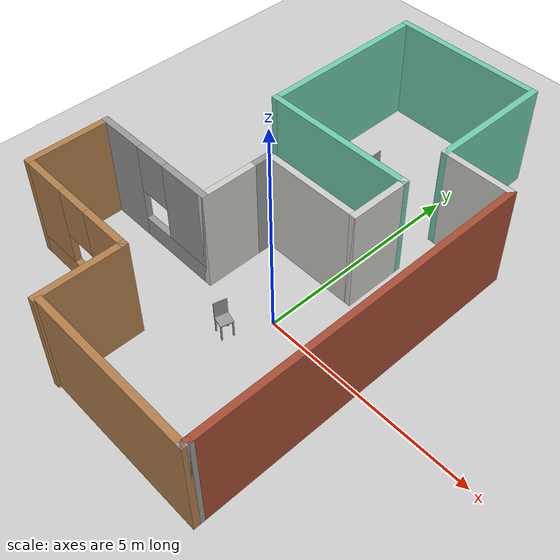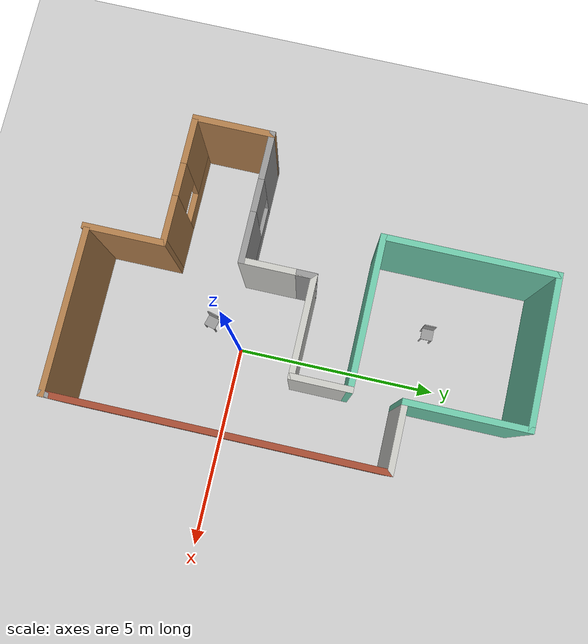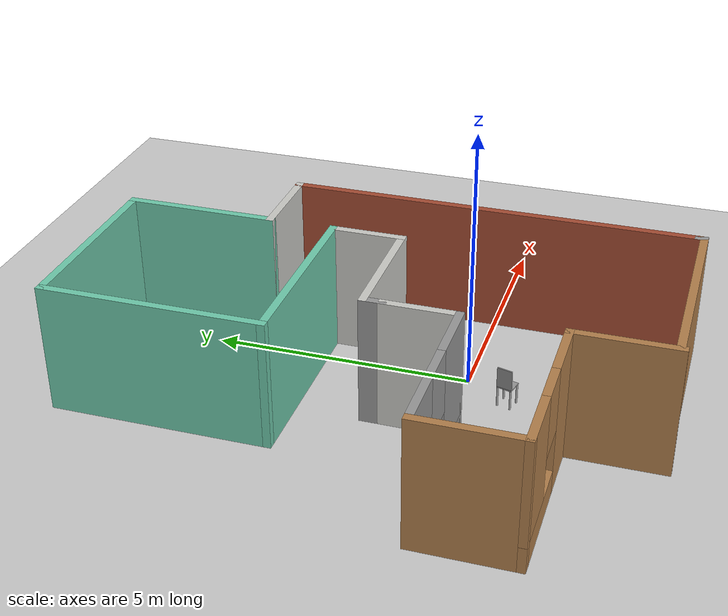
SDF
<sdf version="1.6">
 <world name="default">
  <model name="ground_plane">
   <static>1</static>
   <link name="link">
    <collision name="collision">
     <geometry><plane><normal>0 0 1</normal><size>100 100</size></plane></geometry>
     <surface><friction><ode><mu>100</mu><mu2>50</mu2></ode></friction></surface>
    </collision>
    <visual name="visual">
     <cast_shadows>0</cast_shadows>
     <geometry><plane><normal>0 0 1</normal><size>100 100</size></plane></geometry>
     <material>
      <script><uri>file://media/materials/scripts/gazebo.material</uri><name>Gazebo/Grey</name></script>
     </material>
    </visual>
   </link>
  </model>
  <model name="myChair">
   <link name="link_0">
    <pose>0.022917 -0 0.0914 0 -0 0</pose>
    <inertial>
     <mass>1</mass>
     <inertia>
      <ixx>0.166667</ixx>
      <ixy>0</ixy>
      <ixz>0</ixz>
      <iyy>0.166667</iyy>
      <iyz>0</iyz>
      <izz>0.166667</izz>
     </inertia>
    </inertial>
    <visual name="visual">
     <geometry><box><size>0.3 0.3 0.025</size></box></geometry>
     <material>
      <lighting>1</lighting>
      <script><uri>file://media/materials/scripts/gazebo.material</uri><name>Gazebo/Grey</name></script>
      <ambient>0.3 0.3 0.3 1</ambient>
      <diffuse>0.7 0.7 0.7 1</diffuse>
      <specular>0.01 0.01 0.01 1</specular>
      <emissive>0 0 0 1</emissive>
      <shader type="vertex"><normal_map>__default__</normal_map></shader>
     </material>
    </visual>
    <collision name="collision">
     <geometry><box><size>0.3 0.3 0.025</size></box></geometry>
     <surface>
      <friction>
       <ode><mu>1</mu><mu2>1</mu2><fdir1>0 0 0</fdir1><slip1>0</slip1><slip2>0</slip2></ode>
       <torsional>
        <coefficient>1</coefficient>
        <patch_radius>0</patch_radius>
        <surface_radius>0</surface_radius>
        <use_patch_radius>1</use_patch_radius>
        <ode><slip>0</slip></ode>
       </torsional>
      </friction>
      <bounce><restitution_coefficient>0</restitution_coefficient><threshold>1e+06</threshold></bounce>
      <contact>
       <collide_without_contact>0</collide_without_contact>
       <collide_without_contact_bitmask>1</collide_without_contact_bitmask>
       <collide_bitmask>1</collide_bitmask>
       <ode>
        <soft_cfm>0</soft_cfm>
        <soft_erp>0.2</soft_erp>
        <kp>1e+13</kp>
        <kd>1</kd>
        <max_vel>0.01</max_vel>
        <min_depth>0</min_depth>
       </ode>
       <bullet>
        <split_impulse>1</split_impulse>
        <split_impulse_penetration_threshold>-0.01</split_impulse_penetration_threshold>
        <soft_cfm>0</soft_cfm>
        <soft_erp>0.2</soft_erp>
        <kp>1e+13</kp>
        <kd>1</kd>
       </bullet>
      </contact>
     </surface>
    </collision>
   </link>
   <link name="link_1">
    <pose>-0.107083 -0.13 -0.11875 0 -0 0</pose>
    <inertial>
     <mass>1</mass>
     <inertia><ixx>0.145833</ixx><ixy>0</ixy><ixz>0</ixz><iyy>0.145833</iyy><iyz>0</iyz><izz>0.125</izz></inertia>
    </inertial>
    <visual name="visual">
     <geometry><cylinder><radius>0.02</radius><length>0.4</length></cylinder></geometry>
     <material>
      <lighting>1</lighting>
      <script><uri>file://media/materials/scripts/gazebo.material</uri><name>Gazebo/Grey</name></script>
      <ambient>0.3 0.3 0.3 1</ambient>
      <diffuse>0.7 0.7 0.7 1</diffuse>
      <specular>0.01 0.01 0.01 1</specular>
      <emissive>0 0 0 1</emissive>
      <shader type="vertex"><normal_map>__default__</normal_map></shader>
     </material>
    </visual>
    <collision name="collision">
     <geometry><cylinder><radius>0.02</radius><length>0.4</length></cylinder></geometry>
     <surface>
      <friction>
       <ode><mu>1</mu><mu2>1</mu2><fdir1>0 0 0</fdir1><slip1>0</slip1><slip2>0</slip2></ode>
       <torsional>
        <coefficient>1</coefficient>
        <patch_radius>0</patch_radius>
        <surface_radius>0</surface_radius>
        <use_patch_radius>1</use_patch_radius>
        <ode><slip>0</slip></ode>
       </torsional>
      </friction>
      <bounce><restitution_coefficient>0</restitution_coefficient><threshold>1e+06</threshold></bounce>
      <contact>
       <collide_without_contact>0</collide_without_contact>
       <collide_without_contact_bitmask>1</collide_without_contact_bitmask>
       <collide_bitmask>1</collide_bitmask>
       <ode>
        <soft_cfm>0</soft_cfm>
        <soft_erp>0.2</soft_erp>
        <kp>1e+13</kp>
        <kd>1</kd>
        <max_vel>0.01</max_vel>
        <min_depth>0</min_depth>
       </ode>
       <bullet>
        <split_impulse>1</split_impulse>
        <split_impulse_penetration_threshold>-0.01</split_impulse_penetration_threshold>
        <soft_cfm>0</soft_cfm>
        <soft_erp>0.2</soft_erp>
        <kp>1e+13</kp>
        <kd>1</kd>
       </bullet>
      </contact>
     </surface>
    </collision>
   </link>
   <link name="link_1_clone">
    <pose>-0.107083 0.13 -0.11875 0 -0 0</pose>
    <inertial>
     <mass>1</mass>
     <inertia><ixx>0.145833</ixx><ixy>0</ixy><ixz>0</ixz><iyy>0.145833</iyy><iyz>0</iyz><izz>0.125</izz></inertia>
    </inertial>
    <visual name="visual">
     <geometry><cylinder><radius>0.02</radius><length>0.4</length></cylinder></geometry>
     <material>
      <lighting>1</lighting>
      <script><uri>file://media/materials/scripts/gazebo.material</uri><name>Gazebo/Grey</name></script>
      <ambient>0.3 0.3 0.3 1</ambient>
      <diffuse>0.7 0.7 0.7 1</diffuse>
      <specular>0.01 0.01 0.01 1</specular>
      <emissive>0 0 0 1</emissive>
      <shader type="vertex"><normal_map>__default__</normal_map></shader>
     </material>
    </visual>
    <collision name="collision">
     <geometry><cylinder><radius>0.02</radius><length>0.4</length></cylinder></geometry>
     <surface>
      <friction>
       <ode><mu>1</mu><mu2>1</mu2><fdir1>0 0 0</fdir1><slip1>0</slip1><slip2>0</slip2></ode>
       <torsional>
        <coefficient>1</coefficient>
        <patch_radius>0</patch_radius>
        <surface_radius>0</surface_radius>
        <use_patch_radius>1</use_patch_radius>
        <ode><slip>0</slip></ode>
       </torsional>
      </friction>
      <bounce><restitution_coefficient>0</restitution_coefficient><threshold>1e+06</threshold></bounce>
      <contact>
       <collide_without_contact>0</collide_without_contact>
       <collide_without_contact_bitmask>1</collide_without_contact_bitmask>
       <collide_bitmask>1</collide_bitmask>
       <ode>
        <soft_cfm>0</soft_cfm>
        <soft_erp>0.2</soft_erp>
        <kp>1e+13</kp>
        <kd>1</kd>
        <max_vel>0.01</max_vel>
        <min_depth>0</min_depth>
       </ode>
       <bullet>
        <split_impulse>1</split_impulse>
        <split_impulse_penetration_threshold>-0.01</split_impulse_penetration_threshold>
        <soft_cfm>0</soft_cfm>
        <soft_erp>0.2</soft_erp>
        <kp>1e+13</kp>
        <kd>1</kd>
       </bullet>
      </contact>
     </surface>
    </collision>
   </link>
   <link name="link_1_clone_0">
    <pose>0.152917 -0.13 -0.11875 0 -0 0</pose>
    <inertial>
     <mass>1</mass>
     <inertia><ixx>0.145833</ixx><ixy>0</ixy><ixz>0</ixz><iyy>0.145833</iyy><iyz>0</iyz><izz>0.125</izz></inertia>
    </inertial>
    <visual name="visual">
     <geometry><cylinder><radius>0.02</radius><length>0.4</length></cylinder></geometry>
     <material>
      <lighting>1</lighting>
      <script><uri>file://media/materials/scripts/gazebo.material</uri><name>Gazebo/Grey</name></script>
      <ambient>0.3 0.3 0.3 1</ambient>
      <diffuse>0.7 0.7 0.7 1</diffuse>
      <specular>0.01 0.01 0.01 1</specular>
      <emissive>0 0 0 1</emissive>
      <shader type="vertex"><normal_map>__default__</normal_map></shader>
     </material>
    </visual>
    <collision name="collision">
     <geometry><cylinder><radius>0.02</radius><length>0.4</length></cylinder></geometry>
     <surface>
      <friction>
       <ode><mu>1</mu><mu2>1</mu2><fdir1>0 0 0</fdir1><slip1>0</slip1><slip2>0</slip2></ode>
       <torsional>
        <coefficient>1</coefficient>
        <patch_radius>0</patch_radius>
        <surface_radius>0</surface_radius>
        <use_patch_radius>1</use_patch_radius>
        <ode><slip>0</slip></ode>
       </torsional>
      </friction>
      <bounce><restitution_coefficient>0</restitution_coefficient><threshold>1e+06</threshold></bounce>
      <contact>
       <collide_without_contact>0</collide_without_contact>
       <collide_without_contact_bitmask>1</collide_without_contact_bitmask>
       <collide_bitmask>1</collide_bitmask>
       <ode>
        <soft_cfm>0</soft_cfm>
        <soft_erp>0.2</soft_erp>
        <kp>1e+13</kp>
        <kd>1</kd>
        <max_vel>0.01</max_vel>
        <min_depth>0</min_depth>
       </ode>
       <bullet>
        <split_impulse>1</split_impulse>
        <split_impulse_penetration_threshold>-0.01</split_impulse_penetration_threshold>
        <soft_cfm>0</soft_cfm>
        <soft_erp>0.2</soft_erp>
        <kp>1e+13</kp>
        <kd>1</kd>
       </bullet>
      </contact>
     </surface>
    </collision>
   </link>
   <link name="link_1_clone_1">
    <pose>0.152917 0.13 -0.11875 0 -0 0</pose>
    <inertial>
     <mass>1</mass>
     <inertia><ixx>0.145833</ixx><ixy>0</ixy><ixz>0</ixz><iyy>0.145833</iyy><iyz>0</iyz><izz>0.125</izz></inertia>
    </inertial>
    <visual name="visual">
     <geometry><cylinder><radius>0.02</radius><length>0.4</length></cylinder></geometry>
     <material>
      <lighting>1</lighting>
      <script><uri>file://media/materials/scripts/gazebo.material</uri><name>Gazebo/Grey</name></script>
      <ambient>0.3 0.3 0.3 1</ambient>
      <diffuse>0.7 0.7 0.7 1</diffuse>
      <specular>0.01 0.01 0.01 1</specular>
      <emissive>0 0 0 1</emissive>
      <shader type="vertex"><normal_map>__default__</normal_map></shader>
     </material>
    </visual>
    <collision name="collision">
     <geometry><cylinder><radius>0.02</radius><length>0.4</length></cylinder></geometry>
     <surface>
      <friction>
       <ode><mu>1</mu><mu2>1</mu2><fdir1>0 0 0</fdir1><slip1>0</slip1><slip2>0</slip2></ode>
       <torsional>
        <coefficient>1</coefficient>
        <patch_radius>0</patch_radius>
        <surface_radius>0</surface_radius>
        <use_patch_radius>1</use_patch_radius>
        <ode><slip>0</slip></ode>
       </torsional>
      </friction>
      <bounce><restitution_coefficient>0</restitution_coefficient><threshold>1e+06</threshold></bounce>
      <contact>
       <collide_without_contact>0</collide_without_contact>
       <collide_without_contact_bitmask>1</collide_without_contact_bitmask>
       <collide_bitmask>1</collide_bitmask>
       <ode>
        <soft_cfm>0</soft_cfm>
        <soft_erp>0.2</soft_erp>
        <kp>1e+13</kp>
        <kd>1</kd>
        <max_vel>0.01</max_vel>
        <min_depth>0</min_depth>
       </ode>
       <bullet>
        <split_impulse>1</split_impulse>
        <split_impulse_penetration_threshold>-0.01</split_impulse_penetration_threshold>
        <soft_cfm>0</soft_cfm>
        <soft_erp>0.2</soft_erp>
        <kp>1e+13</kp>
        <kd>1</kd>
       </bullet>
      </contact>
     </surface>
    </collision>
   </link>
   <link name="link_2">
    <pose>-0.114583 0 0.303495 0 -0 0</pose>
    <inertial>
     <mass>1</mass>
     <inertia>
      <ixx>0.166667</ixx>
      <ixy>0</ixy>
      <ixz>0</ixz>
      <iyy>0.166667</iyy>
      <iyz>0</iyz>
      <izz>0.166667</izz>
     </inertia>
    </inertial>
    <visual name="visual">
     <geometry><box><size>0.025 0.3 0.4</size></box></geometry>
     <material>
      <lighting>1</lighting>
      <script><uri>file://media/materials/scripts/gazebo.material</uri><name>Gazebo/Grey</name></script>
      <ambient>0.3 0.3 0.3 1</ambient>
      <diffuse>0.7 0.7 0.7 1</diffuse>
      <specular>0.01 0.01 0.01 1</specular>
      <emissive>0 0 0 1</emissive>
      <shader type="vertex"><normal_map>__default__</normal_map></shader>
     </material>
    </visual>
    <collision name="collision">
     <geometry><box><size>0.025 0.3 0.4</size></box></geometry>
     <surface>
      <friction>
       <ode><mu>1</mu><mu2>1</mu2><fdir1>0 0 0</fdir1><slip1>0</slip1><slip2>0</slip2></ode>
       <torsional>
        <coefficient>1</coefficient>
        <patch_radius>0</patch_radius>
        <surface_radius>0</surface_radius>
        <use_patch_radius>1</use_patch_radius>
        <ode><slip>0</slip></ode>
       </torsional>
      </friction>
      <bounce><restitution_coefficient>0</restitution_coefficient><threshold>1e+06</threshold></bounce>
      <contact>
       <collide_without_contact>0</collide_without_contact>
       <collide_without_contact_bitmask>1</collide_without_contact_bitmask>
       <collide_bitmask>1</collide_bitmask>
       <ode>
        <soft_cfm>0</soft_cfm>
        <soft_erp>0.2</soft_erp>
        <kp>1e+13</kp>
        <kd>1</kd>
        <max_vel>0.01</max_vel>
        <min_depth>0</min_depth>
       </ode>
       <bullet>
        <split_impulse>1</split_impulse>
        <split_impulse_penetration_threshold>-0.01</split_impulse_penetration_threshold>
        <soft_cfm>0</soft_cfm>
        <soft_erp>0.2</soft_erp>
        <kp>1e+13</kp>
        <kd>1</kd>
       </bullet>
      </contact>
     </surface>
    </collision>
   </link>
   <joint name="link_0_JOINT_0" type="fixed">
    <parent>link_0</parent>
    <child>link_1</child>
    <physics>
     <ode><limit><cfm>0</cfm><erp>0.2</erp></limit><suspension><cfm>0</cfm><erp>0.2</erp></suspension></ode>
    </physics>
   </joint>
   <joint name="link_0_JOINT_1" type="fixed">
    <parent>link_0</parent>
    <child>link_1_clone</child>
    <physics>
     <ode><limit><cfm>0</cfm><erp>0.2</erp></limit><suspension><cfm>0</cfm><erp>0.2</erp></suspension></ode>
    </physics>
   </joint>
   <joint name="link_0_JOINT_2" type="fixed">
    <parent>link_0</parent>
    <child>link_1_clone_0</child>
    <physics>
     <ode><limit><cfm>0</cfm><erp>0.2</erp></limit><suspension><cfm>0</cfm><erp>0.2</erp></suspension></ode>
    </physics>
   </joint>
   <joint name="link_0_JOINT_3" type="fixed">
    <parent>link_0</parent>
    <child>link_1_clone_1</child>
    <physics>
     <ode><limit><cfm>0</cfm><erp>0.2</erp></limit><suspension><cfm>0</cfm><erp>0.2</erp></suspension></ode>
    </physics>
   </joint>
   <joint name="link_0_JOINT_5" type="revolute">
    <parent>link_0</parent>
    <child>link_2</child>
    <axis>
     <xyz>1 0 0</xyz>
     <use_parent_model_frame>0</use_parent_model_frame>
     <limit>
      <lower>-1.79769e+308</lower>
      <upper>1.79769e+308</upper>
      <effort>-1</effort>
      <velocity>-1</velocity>
     </limit>
     <dynamics>
      <spring_reference>0</spring_reference>
      <spring_stiffness>0</spring_stiffness>
      <damping>0</damping>
      <friction>0</friction>
     </dynamics>
    </axis>
    <physics>
     <ode><limit><cfm>0</cfm><erp>0.2</erp></limit><suspension><cfm>0</cfm><erp>0.2</erp></suspension></ode>
    </physics>
   </joint>
   <static>0</static>
   <pose>-1.4029 4.54214 0.318748 1e-06 -3e-06 0.003579</pose>
  </model>
  <model name="myChair_clone_clone_0_clone_0">
   <link name="link_0">
    <pose>0.022917 -0 0.0914 0 -0 0</pose>
    <inertial>
     <mass>1</mass>
     <inertia>
      <ixx>0.166667</ixx>
      <ixy>0</ixy>
      <ixz>0</ixz>
      <iyy>0.166667</iyy>
      <iyz>0</iyz>
      <izz>0.166667</izz>
     </inertia>
    </inertial>
    <visual name="visual">
     <geometry><box><size>0.3 0.3 0.025</size></box></geometry>
     <material>
      <lighting>1</lighting>
      <script><uri>file://media/materials/scripts/gazebo.material</uri><name>Gazebo/Grey</name></script>
      <ambient>0.3 0.3 0.3 1</ambient>
      <diffuse>0.7 0.7 0.7 1</diffuse>
      <specular>0.01 0.01 0.01 1</specular>
      <emissive>0 0 0 1</emissive>
      <shader type="vertex"><normal_map>__default__</normal_map></shader>
     </material>
    </visual>
    <collision name="collision">
     <geometry><box><size>0.3 0.3 0.025</size></box></geometry>
     <surface>
      <friction>
       <ode><mu>1</mu><mu2>1</mu2><fdir1>0 0 0</fdir1><slip1>0</slip1><slip2>0</slip2></ode>
       <torsional>
        <coefficient>1</coefficient>
        <patch_radius>0</patch_radius>
        <surface_radius>0</surface_radius>
        <use_patch_radius>1</use_patch_radius>
        <ode><slip>0</slip></ode>
       </torsional>
      </friction>
      <bounce><restitution_coefficient>0</restitution_coefficient><threshold>1e+06</threshold></bounce>
      <contact>
       <collide_without_contact>0</collide_without_contact>
       <collide_without_contact_bitmask>1</collide_without_contact_bitmask>
       <collide_bitmask>1</collide_bitmask>
       <ode>
        <soft_cfm>0</soft_cfm>
        <soft_erp>0.2</soft_erp>
        <kp>1e+13</kp>
        <kd>1</kd>
        <max_vel>0.01</max_vel>
        <min_depth>0</min_depth>
       </ode>
       <bullet>
        <split_impulse>1</split_impulse>
        <split_impulse_penetration_threshold>-0.01</split_impulse_penetration_threshold>
        <soft_cfm>0</soft_cfm>
        <soft_erp>0.2</soft_erp>
        <kp>1e+13</kp>
        <kd>1</kd>
       </bullet>
      </contact>
     </surface>
    </collision>
   </link>
   <link name="link_1">
    <pose>-0.107083 -0.13 -0.11875 0 -0 0</pose>
    <inertial>
     <mass>1</mass>
     <inertia><ixx>0.145833</ixx><ixy>0</ixy><ixz>0</ixz><iyy>0.145833</iyy><iyz>0</iyz><izz>0.125</izz></inertia>
    </inertial>
    <visual name="visual">
     <geometry><cylinder><radius>0.02</radius><length>0.4</length></cylinder></geometry>
     <material>
      <lighting>1</lighting>
      <script><uri>file://media/materials/scripts/gazebo.material</uri><name>Gazebo/Grey</name></script>
      <ambient>0.3 0.3 0.3 1</ambient>
      <diffuse>0.7 0.7 0.7 1</diffuse>
      <specular>0.01 0.01 0.01 1</specular>
      <emissive>0 0 0 1</emissive>
      <shader type="vertex"><normal_map>__default__</normal_map></shader>
     </material>
    </visual>
    <collision name="collision">
     <geometry><cylinder><radius>0.02</radius><length>0.4</length></cylinder></geometry>
     <surface>
      <friction>
       <ode><mu>1</mu><mu2>1</mu2><fdir1>0 0 0</fdir1><slip1>0</slip1><slip2>0</slip2></ode>
       <torsional>
        <coefficient>1</coefficient>
        <patch_radius>0</patch_radius>
        <surface_radius>0</surface_radius>
        <use_patch_radius>1</use_patch_radius>
        <ode><slip>0</slip></ode>
       </torsional>
      </friction>
      <bounce><restitution_coefficient>0</restitution_coefficient><threshold>1e+06</threshold></bounce>
      <contact>
       <collide_without_contact>0</collide_without_contact>
       <collide_without_contact_bitmask>1</collide_without_contact_bitmask>
       <collide_bitmask>1</collide_bitmask>
       <ode>
        <soft_cfm>0</soft_cfm>
        <soft_erp>0.2</soft_erp>
        <kp>1e+13</kp>
        <kd>1</kd>
        <max_vel>0.01</max_vel>
        <min_depth>0</min_depth>
       </ode>
       <bullet>
        <split_impulse>1</split_impulse>
        <split_impulse_penetration_threshold>-0.01</split_impulse_penetration_threshold>
        <soft_cfm>0</soft_cfm>
        <soft_erp>0.2</soft_erp>
        <kp>1e+13</kp>
        <kd>1</kd>
       </bullet>
      </contact>
     </surface>
    </collision>
   </link>
   <link name="link_1_clone">
    <pose>-0.107083 0.13 -0.11875 0 -0 0</pose>
    <inertial>
     <mass>1</mass>
     <inertia><ixx>0.145833</ixx><ixy>0</ixy><ixz>0</ixz><iyy>0.145833</iyy><iyz>0</iyz><izz>0.125</izz></inertia>
    </inertial>
    <visual name="visual">
     <geometry><cylinder><radius>0.02</radius><length>0.4</length></cylinder></geometry>
     <material>
      <lighting>1</lighting>
      <script><uri>file://media/materials/scripts/gazebo.material</uri><name>Gazebo/Grey</name></script>
      <ambient>0.3 0.3 0.3 1</ambient>
      <diffuse>0.7 0.7 0.7 1</diffuse>
      <specular>0.01 0.01 0.01 1</specular>
      <emissive>0 0 0 1</emissive>
      <shader type="vertex"><normal_map>__default__</normal_map></shader>
     </material>
    </visual>
    <collision name="collision">
     <geometry><cylinder><radius>0.02</radius><length>0.4</length></cylinder></geometry>
     <surface>
      <friction>
       <ode><mu>1</mu><mu2>1</mu2><fdir1>0 0 0</fdir1><slip1>0</slip1><slip2>0</slip2></ode>
       <torsional>
        <coefficient>1</coefficient>
        <patch_radius>0</patch_radius>
        <surface_radius>0</surface_radius>
        <use_patch_radius>1</use_patch_radius>
        <ode><slip>0</slip></ode>
       </torsional>
      </friction>
      <bounce><restitution_coefficient>0</restitution_coefficient><threshold>1e+06</threshold></bounce>
      <contact>
       <collide_without_contact>0</collide_without_contact>
       <collide_without_contact_bitmask>1</collide_without_contact_bitmask>
       <collide_bitmask>1</collide_bitmask>
       <ode>
        <soft_cfm>0</soft_cfm>
        <soft_erp>0.2</soft_erp>
        <kp>1e+13</kp>
        <kd>1</kd>
        <max_vel>0.01</max_vel>
        <min_depth>0</min_depth>
       </ode>
       <bullet>
        <split_impulse>1</split_impulse>
        <split_impulse_penetration_threshold>-0.01</split_impulse_penetration_threshold>
        <soft_cfm>0</soft_cfm>
        <soft_erp>0.2</soft_erp>
        <kp>1e+13</kp>
        <kd>1</kd>
       </bullet>
      </contact>
     </surface>
    </collision>
   </link>
   <link name="link_1_clone_0">
    <pose>0.152917 -0.13 -0.11875 0 -0 0</pose>
    <inertial>
     <mass>1</mass>
     <inertia><ixx>0.145833</ixx><ixy>0</ixy><ixz>0</ixz><iyy>0.145833</iyy><iyz>0</iyz><izz>0.125</izz></inertia>
    </inertial>
    <visual name="visual">
     <geometry><cylinder><radius>0.02</radius><length>0.4</length></cylinder></geometry>
     <material>
      <lighting>1</lighting>
      <script><uri>file://media/materials/scripts/gazebo.material</uri><name>Gazebo/Grey</name></script>
      <ambient>0.3 0.3 0.3 1</ambient>
      <diffuse>0.7 0.7 0.7 1</diffuse>
      <specular>0.01 0.01 0.01 1</specular>
      <emissive>0 0 0 1</emissive>
      <shader type="vertex"><normal_map>__default__</normal_map></shader>
     </material>
    </visual>
    <collision name="collision">
     <geometry><cylinder><radius>0.02</radius><length>0.4</length></cylinder></geometry>
     <surface>
      <friction>
       <ode><mu>1</mu><mu2>1</mu2><fdir1>0 0 0</fdir1><slip1>0</slip1><slip2>0</slip2></ode>
       <torsional>
        <coefficient>1</coefficient>
        <patch_radius>0</patch_radius>
        <surface_radius>0</surface_radius>
        <use_patch_radius>1</use_patch_radius>
        <ode><slip>0</slip></ode>
       </torsional>
      </friction>
      <bounce><restitution_coefficient>0</restitution_coefficient><threshold>1e+06</threshold></bounce>
      <contact>
       <collide_without_contact>0</collide_without_contact>
       <collide_without_contact_bitmask>1</collide_without_contact_bitmask>
       <collide_bitmask>1</collide_bitmask>
       <ode>
        <soft_cfm>0</soft_cfm>
        <soft_erp>0.2</soft_erp>
        <kp>1e+13</kp>
        <kd>1</kd>
        <max_vel>0.01</max_vel>
        <min_depth>0</min_depth>
       </ode>
       <bullet>
        <split_impulse>1</split_impulse>
        <split_impulse_penetration_threshold>-0.01</split_impulse_penetration_threshold>
        <soft_cfm>0</soft_cfm>
        <soft_erp>0.2</soft_erp>
        <kp>1e+13</kp>
        <kd>1</kd>
       </bullet>
      </contact>
     </surface>
    </collision>
   </link>
   <link name="link_1_clone_1">
    <pose>0.152917 0.13 -0.11875 0 -0 0</pose>
    <inertial>
     <mass>1</mass>
     <inertia><ixx>0.145833</ixx><ixy>0</ixy><ixz>0</ixz><iyy>0.145833</iyy><iyz>0</iyz><izz>0.125</izz></inertia>
    </inertial>
    <visual name="visual">
     <geometry><cylinder><radius>0.02</radius><length>0.4</length></cylinder></geometry>
     <material>
      <lighting>1</lighting>
      <script><uri>file://media/materials/scripts/gazebo.material</uri><name>Gazebo/Grey</name></script>
      <ambient>0.3 0.3 0.3 1</ambient>
      <diffuse>0.7 0.7 0.7 1</diffuse>
      <specular>0.01 0.01 0.01 1</specular>
      <emissive>0 0 0 1</emissive>
      <shader type="vertex"><normal_map>__default__</normal_map></shader>
     </material>
    </visual>
    <collision name="collision">
     <geometry><cylinder><radius>0.02</radius><length>0.4</length></cylinder></geometry>
     <surface>
      <friction>
       <ode><mu>1</mu><mu2>1</mu2><fdir1>0 0 0</fdir1><slip1>0</slip1><slip2>0</slip2></ode>
       <torsional>
        <coefficient>1</coefficient>
        <patch_radius>0</patch_radius>
        <surface_radius>0</surface_radius>
        <use_patch_radius>1</use_patch_radius>
        <ode><slip>0</slip></ode>
       </torsional>
      </friction>
      <bounce><restitution_coefficient>0</restitution_coefficient><threshold>1e+06</threshold></bounce>
      <contact>
       <collide_without_contact>0</collide_without_contact>
       <collide_without_contact_bitmask>1</collide_without_contact_bitmask>
       <collide_bitmask>1</collide_bitmask>
       <ode>
        <soft_cfm>0</soft_cfm>
        <soft_erp>0.2</soft_erp>
        <kp>1e+13</kp>
        <kd>1</kd>
        <max_vel>0.01</max_vel>
        <min_depth>0</min_depth>
       </ode>
       <bullet>
        <split_impulse>1</split_impulse>
        <split_impulse_penetration_threshold>-0.01</split_impulse_penetration_threshold>
        <soft_cfm>0</soft_cfm>
        <soft_erp>0.2</soft_erp>
        <kp>1e+13</kp>
        <kd>1</kd>
       </bullet>
      </contact>
     </surface>
    </collision>
   </link>
   <link name="link_2">
    <pose>-0.114583 0 0.303495 0 -0 0</pose>
    <inertial>
     <mass>1</mass>
     <inertia>
      <ixx>0.166667</ixx>
      <ixy>0</ixy>
      <ixz>0</ixz>
      <iyy>0.166667</iyy>
      <iyz>0</iyz>
      <izz>0.166667</izz>
     </inertia>
    </inertial>
    <visual name="visual">
     <geometry><box><size>0.025 0.3 0.4</size></box></geometry>
     <material>
      <lighting>1</lighting>
      <script><uri>file://media/materials/scripts/gazebo.material</uri><name>Gazebo/Grey</name></script>
      <ambient>0.3 0.3 0.3 1</ambient>
      <diffuse>0.7 0.7 0.7 1</diffuse>
      <specular>0.01 0.01 0.01 1</specular>
      <emissive>0 0 0 1</emissive>
      <shader type="vertex"><normal_map>__default__</normal_map></shader>
     </material>
    </visual>
    <collision name="collision">
     <geometry><box><size>0.025 0.3 0.4</size></box></geometry>
     <surface>
      <friction>
       <ode><mu>1</mu><mu2>1</mu2><fdir1>0 0 0</fdir1><slip1>0</slip1><slip2>0</slip2></ode>
       <torsional>
        <coefficient>1</coefficient>
        <patch_radius>0</patch_radius>
        <surface_radius>0</surface_radius>
        <use_patch_radius>1</use_patch_radius>
        <ode><slip>0</slip></ode>
       </torsional>
      </friction>
      <bounce><restitution_coefficient>0</restitution_coefficient><threshold>1e+06</threshold></bounce>
      <contact>
       <collide_without_contact>0</collide_without_contact>
       <collide_without_contact_bitmask>1</collide_without_contact_bitmask>
       <collide_bitmask>1</collide_bitmask>
       <ode>
        <soft_cfm>0</soft_cfm>
        <soft_erp>0.2</soft_erp>
        <kp>1e+13</kp>
        <kd>1</kd>
        <max_vel>0.01</max_vel>
        <min_depth>0</min_depth>
       </ode>
       <bullet>
        <split_impulse>1</split_impulse>
        <split_impulse_penetration_threshold>-0.01</split_impulse_penetration_threshold>
        <soft_cfm>0</soft_cfm>
        <soft_erp>0.2</soft_erp>
        <kp>1e+13</kp>
        <kd>1</kd>
       </bullet>
      </contact>
     </surface>
    </collision>
   </link>
   <joint name="link_0_JOINT_0" type="fixed">
    <parent>link_0</parent>
    <child>link_1</child>
    <physics>
     <ode><limit><cfm>0</cfm><erp>0.2</erp></limit><suspension><cfm>0</cfm><erp>0.2</erp></suspension></ode>
    </physics>
   </joint>
   <joint name="link_0_JOINT_1" type="fixed">
    <parent>link_0</parent>
    <child>link_1_clone</child>
    <physics>
     <ode><limit><cfm>0</cfm><erp>0.2</erp></limit><suspension><cfm>0</cfm><erp>0.2</erp></suspension></ode>
    </physics>
   </joint>
   <joint name="link_0_JOINT_2" type="fixed">
    <parent>link_0</parent>
    <child>link_1_clone_0</child>
    <physics>
     <ode><limit><cfm>0</cfm><erp>0.2</erp></limit><suspension><cfm>0</cfm><erp>0.2</erp></suspension></ode>
    </physics>
   </joint>
   <joint name="link_0_JOINT_3" type="fixed">
    <parent>link_0</parent>
    <child>link_1_clone_1</child>
    <physics>
     <ode><limit><cfm>0</cfm><erp>0.2</erp></limit><suspension><cfm>0</cfm><erp>0.2</erp></suspension></ode>
    </physics>
   </joint>
   <joint name="link_0_JOINT_5" type="revolute">
    <parent>link_0</parent>
    <child>link_2</child>
    <axis>
     <xyz>1 0 0</xyz>
     <use_parent_model_frame>0</use_parent_model_frame>
     <limit>
      <lower>-1.79769e+308</lower>
      <upper>1.79769e+308</upper>
      <effort>-1</effort>
      <velocity>-1</velocity>
     </limit>
     <dynamics>
      <spring_reference>0</spring_reference>
      <spring_stiffness>0</spring_stiffness>
      <damping>0</damping>
      <friction>0</friction>
     </dynamics>
    </axis>
    <physics>
     <ode><limit><cfm>0</cfm><erp>0.2</erp></limit><suspension><cfm>0</cfm><erp>0.2</erp></suspension></ode>
    </physics>
   </joint>
   <static>0</static>
   <pose>-0.516573 -0.83244 0.318747 1e-06 -3e-06 -0.25838</pose>
  </model>
  <model name="MyApart">
   <pose>-1.28379 1.53493 0 0 -0 0</pose>
   <link name="Wall_0">
    <collision name="Wall_0_Collision">
     <geometry><box><size>2 0.15 2.5</size></box></geometry>
     <pose>0 0 1.25 0 -0 0</pose>
    </collision>
    <visual name="Wall_0_Visual">
     <pose>0 0 1.25 0 -0 0</pose>
     <geometry><box><size>2 0.15 2.5</size></box></geometry>
     <material>
      <script><uri>file://media/materials/scripts/gazebo.material</uri><name>Gazebo/Wood</name></script>
      <ambient>1 0.764706 0.305882 1</ambient>
     </material>
     <meta><layer>0</layer></meta>
    </visual>
    <pose>-0.425 -4.5 0 0 -0 1.5708</pose>
   </link>
   <link name="Wall_1">
    <pose>-1.975 -3.575 0 0 -0 3.14159</pose>
    <visual name="Wall_1_Visual_0">
     <pose>-1.00948 0 1.25 0 -0 0</pose>
     <geometry><box><size>1.23103 0.15 2.5</size></box></geometry>
     <material>
      <script><uri>file://media/materials/scripts/gazebo.material</uri><name>Gazebo/Wood</name></script>
      <ambient>1 0.764706 0.305882 1</ambient>
     </material>
     <meta><layer>0</layer></meta>
    </visual>
    <collision name="Wall_1_Collision_0">
     <geometry><box><size>1.23103 0.15 2.5</size></box></geometry>
     <pose>-1.00948 0 1.25 0 -0 0</pose>
    </collision>
    <visual name="Wall_1_Visual_1">
     <pose>0.615517 0 0.25 0 -0 0</pose>
     <geometry><box><size>2.01897 0.15 0.5</size></box></geometry>
     <material>
      <script><uri>file://media/materials/scripts/gazebo.material</uri><name>Gazebo/Wood</name></script>
      <ambient>1 0.764706 0.305882 1</ambient>
     </material>
     <meta><layer>0</layer></meta>
    </visual>
    <collision name="Wall_1_Collision_1">
     <geometry><box><size>2.01897 0.15 0.5</size></box></geometry>
     <pose>0.615517 0 0.25 0 -0 0</pose>
    </collision>
    <visual name="Wall_1_Visual_2">
     <pose>1.01552 0 1.5 0 -0 0</pose>
     <geometry><box><size>1.21897 0.15 2</size></box></geometry>
     <material>
      <script><uri>file://media/materials/scripts/gazebo.material</uri><name>Gazebo/Wood</name></script>
      <ambient>1 0.764706 0.305882 1</ambient>
     </material>
     <meta><layer>0</layer></meta>
    </visual>
    <collision name="Wall_1_Collision_2">
     <geometry><box><size>1.21897 0.15 2</size></box></geometry>
     <pose>1.01552 0 1.5 0 -0 0</pose>
    </collision>
    <visual name="Wall_1_Visual_3">
     <pose>0.006034 0 1.9 0 -0 0</pose>
     <geometry><box><size>0.8 0.15 1.2</size></box></geometry>
     <material>
      <script><uri>file://media/materials/scripts/gazebo.material</uri><name>Gazebo/Wood</name></script>
      <ambient>1 0.764706 0.305882 1</ambient>
     </material>
     <meta><layer>0</layer></meta>
    </visual>
    <collision name="Wall_1_Collision_3">
     <geometry><box><size>0.8 0.15 1.2</size></box></geometry>
     <pose>0.006034 0 1.9 0 -0 0</pose>
    </collision>
   </link>
   <link name="Wall_10">
    <collision name="Wall_10_Collision">
     <geometry><box><size>4.25 0.15 2.5</size></box></geometry>
     <pose>0 0 1.25 0 -0 0</pose>
    </collision>
    <visual name="Wall_10_Visual">
     <pose>0 0 1.25 0 -0 0</pose>
     <geometry><box><size>4.25 0.15 2.5</size></box></geometry>
     <material>
      <script><uri>file://media/materials/scripts/gazebo.material</uri><name>Gazebo/Grey</name></script>
      <ambient>0.435294 0.796078 0.67451 1</ambient>
     </material>
     <meta><layer>0</layer></meta>
    </visual>
    <pose>-1.675 3.375 0 0 -0 1.5708</pose>
   </link>
   <link name="Wall_11">
    <collision name="Wall_11_Collision">
     <geometry><box><size>3.75 0.15 2.5</size></box></geometry>
     <pose>0 0 1.25 0 -0 0</pose>
    </collision>
    <visual name="Wall_11_Visual">
     <pose>0 0 1.25 0 -0 0</pose>
     <geometry><box><size>3.75 0.15 2.5</size></box></geometry>
     <material>
      <script><uri>file://media/materials/scripts/gazebo.material</uri><name>Gazebo/Grey</name></script>
      <ambient>0.435294 0.796078 0.67451 1</ambient>
     </material>
     <meta><layer>0</layer></meta>
    </visual>
    <pose>0.125 5.425 0 0 -0 0</pose>
   </link>
   <link name="Wall_12">
    <collision name="Wall_12_Collision">
     <geometry><box><size>3 0.15 2.5</size></box></geometry>
     <pose>0 0 1.25 0 -0 0</pose>
    </collision>
    <visual name="Wall_12_Visual">
     <pose>0 0 1.25 0 -0 0</pose>
     <geometry><box><size>3 0.15 2.5</size></box></geometry>
     <material>
      <script><uri>file://media/materials/scripts/gazebo.material</uri><name>Gazebo/Grey</name></script>
      <ambient>0.435294 0.796078 0.67451 1</ambient>
     </material>
     <meta><layer>0</layer></meta>
    </visual>
    <pose>1.925 4 0 0 0 -1.5708</pose>
   </link>
   <link name="Wall_13">
    <collision name="Wall_13_Collision">
     <geometry><box><size>1.75 0.15 2.5</size></box></geometry>
     <pose>0 0 1.25 0 -0 0</pose>
    </collision>
    <visual name="Wall_13_Visual">
     <pose>0 0 1.25 0 -0 0</pose>
     <geometry><box><size>1.75 0.15 2.5</size></box></geometry>
     <material>
      <script><uri>file://media/materials/scripts/gazebo.material</uri><name>Gazebo/CeilingTiled</name></script>
      <ambient>1 1 1 1</ambient>
     </material>
     <meta><layer>0</layer></meta>
    </visual>
    <pose>2.725 2.575 0 0 -0 0</pose>
   </link>
   <link name="Wall_14">
    <collision name="Wall_14_Collision">
     <geometry><box><size>8 0.15 2.5</size></box></geometry>
     <pose>0 0 1.25 0 -0 0</pose>
    </collision>
    <visual name="Wall_14_Visual">
     <pose>0 0 1.25 0 -0 0</pose>
     <geometry><box><size>8 0.15 2.5</size></box></geometry>
     <material>
      <script><uri>file://media/materials/scripts/gazebo.material</uri><name>Gazebo/Bricks</name></script>
      <ambient>1 1 1 1</ambient>
     </material>
     <meta><layer>0</layer></meta>
    </visual>
    <pose>3.525 -1.35 0 0 0 -1.5708</pose>
   </link>
   <link name="Wall_15">
    <collision name="Wall_15_Collision">
     <geometry><box><size>0.15 0.15 2.5</size></box></geometry>
     <pose>0 0 1.25 0 -0 0</pose>
    </collision>
    <visual name="Wall_15_Visual">
     <pose>0 0 1.25 0 -0 0</pose>
     <geometry><box><size>0.15 0.15 2.5</size></box></geometry>
     <material>
      <script><uri>file://media/materials/scripts/gazebo.material</uri><name>Gazebo/Grey</name></script>
      <ambient>1 1 1 1</ambient>
     </material>
     <meta><layer>0</layer></meta>
    </visual>
    <pose>3.525 -5.275 0 0 -0 0</pose>
   </link>
   <link name="Wall_16">
    <collision name="Wall_16_Collision">
     <geometry><box><size>0.25 0.15 2.5</size></box></geometry>
     <pose>0 0 1.25 0 -0 0</pose>
    </collision>
    <visual name="Wall_16_Visual">
     <pose>0 0 1.25 0 -0 0</pose>
     <geometry><box><size>0.25 0.15 2.5</size></box></geometry>
     <material>
      <script><uri>file://media/materials/scripts/gazebo.material</uri><name>Gazebo/Grey</name></script>
      <ambient>1 1 1 1</ambient>
     </material>
     <meta><layer>0</layer></meta>
    </visual>
    <pose>3.525 -5.325 0 0 0 -1.5708</pose>
   </link>
   <link name="Wall_17">
    <collision name="Wall_17_Collision">
     <geometry><box><size>4 0.15 2.5</size></box></geometry>
     <pose>0 0 1.25 0 -0 0</pose>
    </collision>
    <visual name="Wall_17_Visual">
     <pose>0 0 1.25 0 -0 0</pose>
     <geometry><box><size>4 0.15 2.5</size></box></geometry>
     <material>
      <script><uri>file://media/materials/scripts/gazebo.material</uri><name>Gazebo/Wood</name></script>
      <ambient>1 1 1 1</ambient>
     </material>
     <meta><layer>0</layer></meta>
    </visual>
    <pose>1.6 -5.375 0 0 -0 3.14159</pose>
   </link>
   <link name="Wall_2">
    <collision name="Wall_2_Collision">
     <geometry><box><size>2 0.15 2.5</size></box></geometry>
     <pose>0 0 1.25 0 -0 0</pose>
    </collision>
    <visual name="Wall_2_Visual">
     <pose>0 0 1.25 0 -0 0</pose>
     <geometry><box><size>2 0.15 2.5</size></box></geometry>
     <material>
      <script><uri>file://media/materials/scripts/gazebo.material</uri><name>Gazebo/Wood</name></script>
      <ambient>1 0.764706 0.305882 1</ambient>
     </material>
     <meta><layer>0</layer></meta>
    </visual>
    <pose>-3.525 -2.65 0 0 -0 1.5708</pose>
   </link>
   <link name="Wall_3">
    <pose>-1.975 -1.725 0 0 -0 0</pose>
    <visual name="Wall_3_Visual_0">
     <pose>-1.02708 0 1.25 0 -0 0</pose>
     <geometry><box><size>1.19583 0.15 2.5</size></box></geometry>
     <material>
      <script><uri>file://media/materials/scripts/gazebo.material</uri><name>Gazebo/Grey</name></script>
      <ambient>1 1 1 1</ambient>
     </material>
     <meta><layer>0</layer></meta>
    </visual>
    <collision name="Wall_3_Collision_0">
     <geometry><box><size>1.19583 0.15 2.5</size></box></geometry>
     <pose>-1.02708 0 1.25 0 -0 0</pose>
    </collision>
    <visual name="Wall_3_Visual_1">
     <pose>0.597918 0 0.25 0 -0 0</pose>
     <geometry><box><size>2.05416 0.15 0.5</size></box></geometry>
     <material>
      <script><uri>file://media/materials/scripts/gazebo.material</uri><name>Gazebo/Grey</name></script>
      <ambient>1 1 1 1</ambient>
     </material>
     <meta><layer>0</layer></meta>
    </visual>
    <collision name="Wall_3_Collision_1">
     <geometry><box><size>2.05416 0.15 0.5</size></box></geometry>
     <pose>0.597918 0 0.25 0 -0 0</pose>
    </collision>
    <visual name="Wall_3_Visual_2">
     <pose>0.997918 0 1.5 0 -0 0</pose>
     <geometry><box><size>1.25416 0.15 2</size></box></geometry>
     <material>
      <script><uri>file://media/materials/scripts/gazebo.material</uri><name>Gazebo/Grey</name></script>
      <ambient>1 1 1 1</ambient>
     </material>
     <meta><layer>0</layer></meta>
    </visual>
    <collision name="Wall_3_Collision_2">
     <geometry><box><size>1.25416 0.15 2</size></box></geometry>
     <pose>0.997918 0 1.5 0 -0 0</pose>
    </collision>
    <visual name="Wall_3_Visual_3">
     <pose>-0.029165 0 1.9 0 -0 0</pose>
     <geometry><box><size>0.8 0.15 1.2</size></box></geometry>
     <material>
      <script><uri>file://media/materials/scripts/gazebo.material</uri><name>Gazebo/Grey</name></script>
      <ambient>1 1 1 1</ambient>
     </material>
     <meta><layer>0</layer></meta>
    </visual>
    <collision name="Wall_3_Collision_3">
     <geometry><box><size>0.8 0.15 1.2</size></box></geometry>
     <pose>-0.029165 0 1.9 0 -0 0</pose>
    </collision>
   </link>
   <link name="Wall_4">
    <collision name="Wall_4_Collision">
     <geometry><box><size>1.5 0.15 2.5</size></box></geometry>
     <pose>0 0 1.25 0 -0 0</pose>
    </collision>
    <visual name="Wall_4_Visual">
     <pose>0 0 1.25 0 -0 0</pose>
     <geometry><box><size>1.5 0.15 2.5</size></box></geometry>
     <material>
      <script><uri>file://media/materials/scripts/gazebo.material</uri><name>Gazebo/CeilingTiled</name></script>
      <ambient>1 1 1 1</ambient>
     </material>
     <meta><layer>0</layer></meta>
    </visual>
    <pose>-0.425 -1.05 0 0 -0 1.5708</pose>
   </link>
   <link name="Wall_5">
    <collision name="Wall_5_Collision">
     <geometry><box><size>0.5 0.15 2.5</size></box></geometry>
     <pose>0 0 1.25 0 -0 0</pose>
    </collision>
    <visual name="Wall_5_Visual">
     <pose>0 0 1.25 0 -0 0</pose>
     <geometry><box><size>0.5 0.15 2.5</size></box></geometry>
     <material>
      <script><uri>file://media/materials/scripts/gazebo.material</uri><name>Gazebo/Grey</name></script>
      <ambient>1 1 1 1</ambient>
     </material>
     <meta><layer>0</layer></meta>
    </visual>
    <pose>-0.425 -0.2 0 0 -0 1.5708</pose>
   </link>
   <link name="Wall_6">
    <collision name="Wall_6_Collision">
     <geometry><box><size>2.5 0.15 2.5</size></box></geometry>
     <pose>0 0 1.25 0 -0 0</pose>
    </collision>
    <visual name="Wall_6_Visual">
     <pose>0 0 1.25 0 -0 0</pose>
     <geometry><box><size>2.5 0.15 2.5</size></box></geometry>
     <material>
      <script><uri>file://media/materials/scripts/gazebo.material</uri><name>Gazebo/CeilingTiled</name></script>
      <ambient>1 1 1 1</ambient>
     </material>
     <meta><layer>0</layer></meta>
    </visual>
    <pose>0.75 -0.025 0 0 -0 0</pose>
   </link>
   <link name="Wall_7">
    <collision name="Wall_7_Collision">
     <geometry><box><size>1.5 0.15 2.5</size></box></geometry>
     <pose>0 0 1.25 0 -0 0</pose>
    </collision>
    <visual name="Wall_7_Visual">
     <pose>0 0 1.25 0 -0 0</pose>
     <geometry><box><size>1.5 0.15 2.5</size></box></geometry>
     <material>
      <script><uri>file://media/materials/scripts/gazebo.material</uri><name>Gazebo/CeilingTiled</name></script>
      <ambient>0.996078 0.47451 0.0196078 1</ambient>
     </material>
     <meta><layer>0</layer></meta>
    </visual>
    <pose>1.925 0.65 0 0 -0 1.5708</pose>
   </link>
   <link name="Wall_9">
    <collision name="Wall_9_Collision">
     <geometry><box><size>3.75 0.15 2.5</size></box></geometry>
     <pose>0 0 1.25 0 -0 0</pose>
    </collision>
    <visual name="Wall_9_Visual">
     <pose>0 0 1.25 0 -0 0</pose>
     <geometry><box><size>3.75 0.15 2.5</size></box></geometry>
     <material>
      <script><uri>file://media/materials/scripts/gazebo.material</uri><name>Gazebo/Grey</name></script>
      <ambient>0.435294 0.796078 0.67451 1</ambient>
     </material>
     <meta><layer>0</layer></meta>
    </visual>
    <pose>0.125 1.325 0 0 -0 3.14159</pose>
   </link>
   <static>1</static>
  </model>
 </world>
</sdf>
